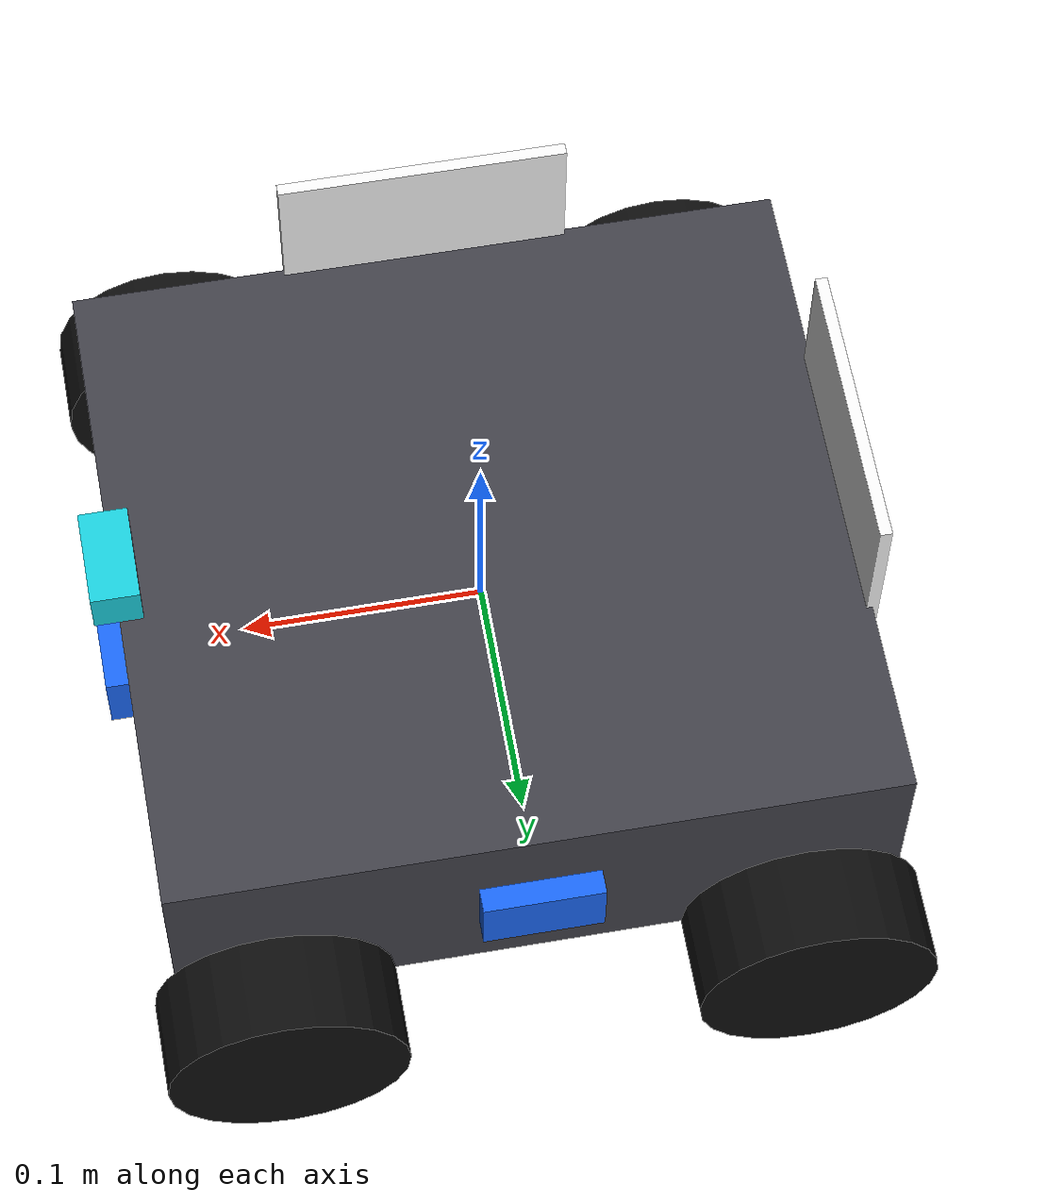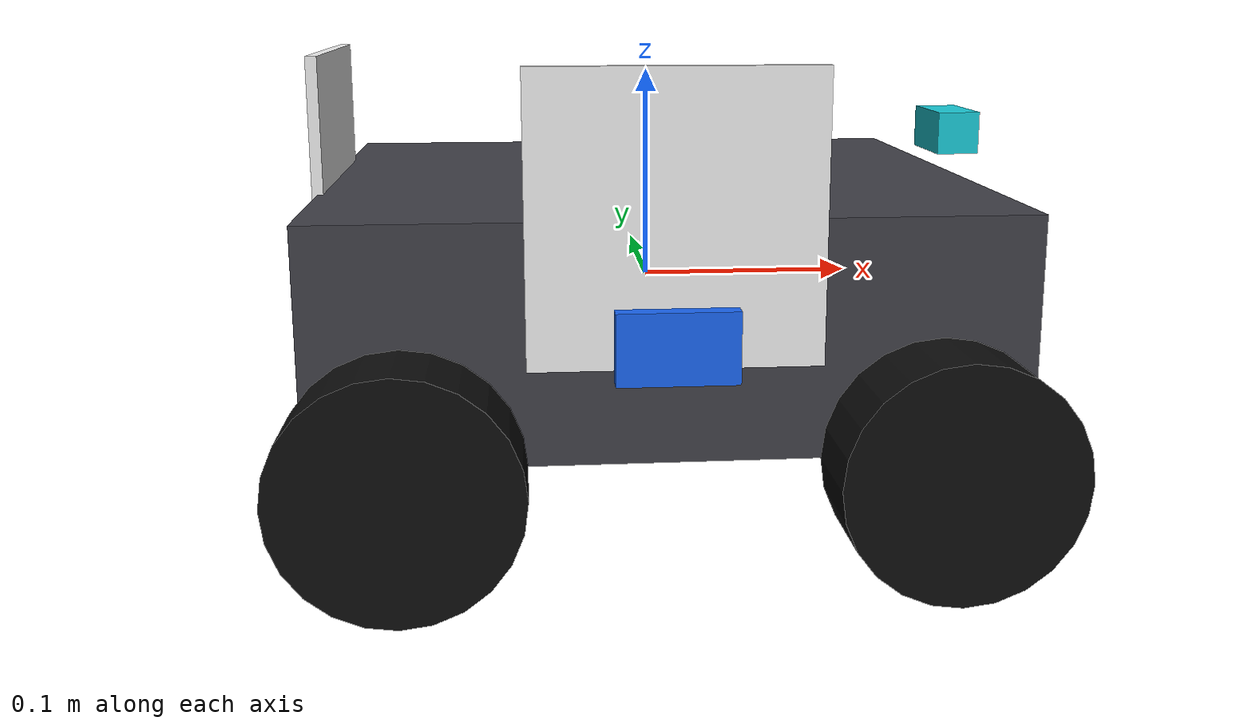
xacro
<?xml version="1.0"?>
<robot name="multibot" xmlns:xacro="http://www.ros.org/wiki/xacro">

  <xacro:property name="body_x" value="0.30"/>
  <xacro:property name="body_y" value="0.28"/>
  <xacro:property name="body_z" value="0.10"/>
  <xacro:property name="wheel_r" value="0.05"/>
  <xacro:property name="wheel_dx" value="0.11"/>
  <xacro:property name="wheel_dy" value="0.16"/>

  <material name="charcoal"><color rgba="0.25 0.25 0.28 1"/></material>
  <material name="black"><color rgba="0.05 0.05 0.05 1"/></material>
  <material name="us_blue"><color rgba="0.1 0.4 0.95 1"/></material>
  <material name="cam_cyan"><color rgba="0.1 0.8 0.85 1"/></material>
  <material name="marker_white"><color rgba="0.95 0.95 0.95 1"/></material>

  <xacro:macro name="box_inertial" params="mass x y z">
    <inertial><mass value="${mass}"/>
      <inertia ixx="${mass*(y*y+z*z)/12.0}" iyy="${mass*(x*x+z*z)/12.0}"
               izz="${mass*(x*x+y*y)/12.0}" ixy="0" ixz="0" iyz="0"/></inertial>
  </xacro:macro>

  <xacro:macro name="wheel" params="name px py">
    <link name="${name}"><visual><origin rpy="1.5708 0 0"/>
      <geometry><cylinder radius="${wheel_r}" length="0.04"/></geometry>
      <material name="black"/></visual>
      <xacro:box_inertial mass="0.2" x="${wheel_r}" y="0.04" z="${wheel_r}"/></link>
    <joint name="${name}_joint" type="continuous"><parent link="base_link"/>
      <child link="${name}"/><origin xyz="${px} ${py} ${-body_z/2}"/><axis xyz="0 1 0"/></joint>
  </xacro:macro>

  <xacro:macro name="ultrasonic" params="name px py yaw">
    <link name="${name}"><visual><geometry><box size="0.02 0.05 0.03"/></geometry>
      <material name="us_blue"/></visual>
      <xacro:box_inertial mass="0.02" x="0.02" y="0.05" z="0.03"/></link>
    <joint name="${name}_joint" type="fixed"><parent link="base_link"/><child link="${name}"/>
      <origin xyz="${px} ${py} 0" rpy="0 0 ${yaw}"/></joint>
  </xacro:macro>

  <link name="base_link">
    <visual><geometry><box size="${body_x} ${body_y} ${body_z}"/></geometry>
      <material name="charcoal"/></visual>
    <collision><geometry><box size="${body_x} ${body_y} ${body_z}"/></geometry></collision>
    <xacro:box_inertial mass="2.0" x="${body_x}" y="${body_y}" z="${body_z}"/>
  </link>

  <xacro:wheel name="wheel_fl" px="${ wheel_dx}" py="${ wheel_dy}"/>
  <xacro:wheel name="wheel_fr" px="${ wheel_dx}" py="${-wheel_dy}"/>
  <xacro:wheel name="wheel_rl" px="${-wheel_dx}" py="${ wheel_dy}"/>
  <xacro:wheel name="wheel_rr" px="${-wheel_dx}" py="${-wheel_dy}"/>

  <xacro:ultrasonic name="us_front" px="${ body_x/2}" py="0" yaw="0"/>
  <xacro:ultrasonic name="us_left"  px="0" py="${ body_y/2}" yaw="1.5708"/>
  <xacro:ultrasonic name="us_right" px="0" py="${-body_y/2}" yaw="-1.5708"/>

  <!-- === CHECKPOINT: camera === front camera + optical frame -->
  <link name="camera_link"><visual><geometry><box size="0.02 0.04 0.02"/></geometry>
    <material name="cam_cyan"/></visual></link>
  <joint name="camera_joint" type="fixed"><parent link="base_link"/><child link="camera_link"/>
    <origin xyz="${body_x/2} 0 ${body_z/2+0.02}"/></joint>
  <link name="camera_optical_frame"/>
  <joint name="camera_optical_joint" type="fixed"><parent link="camera_link"/>
    <child link="camera_optical_frame"/><origin xyz="0 0 0" rpy="-1.5708 0 -1.5708"/></joint>
  <!-- === END CHECKPOINT: camera === -->

  <!-- === CHECKPOINT: markers === ArUco panels on the BACK (-x) and RIGHT (-y) faces -->
  <link name="marker_back"><visual><geometry><box size="0.005 0.12 0.12"/></geometry>
    <material name="marker_white"/></visual></link>
  <joint name="marker_back_joint" type="fixed"><parent link="base_link"/><child link="marker_back"/>
    <origin xyz="${-body_x/2} 0 ${body_z/2}"/></joint>
  <link name="marker_right"><visual><geometry><box size="0.12 0.005 0.12"/></geometry>
    <material name="marker_white"/></visual></link>
  <joint name="marker_right_joint" type="fixed"><parent link="base_link"/><child link="marker_right"/>
    <origin xyz="0 ${-body_y/2} ${body_z/2}"/></joint>
  <!-- === END CHECKPOINT: markers === -->

</robot>
